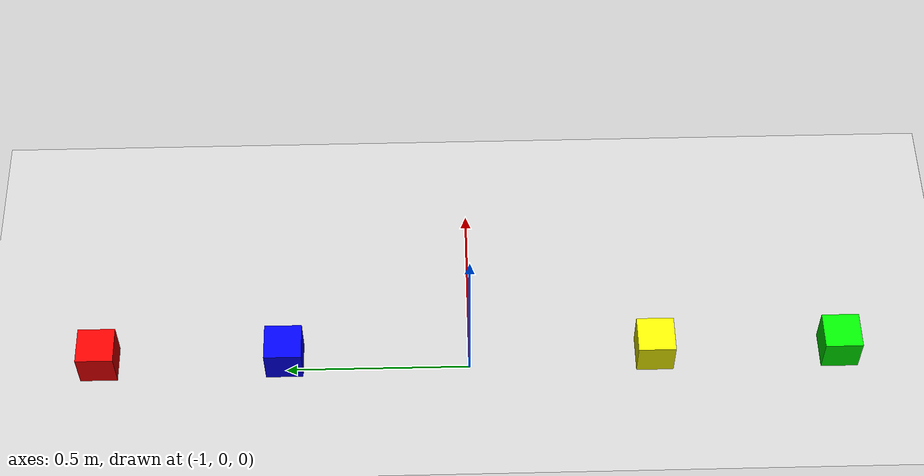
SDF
<?xml version="1.0" ?>
<sdf version="1.6">
  <world name="empty">
    <physics name="1ms" type="ignored">
      <max_step_size>0.001</max_step_size>
      <real_time_factor>1.0</real_time_factor>
    </physics>

    <plugin filename="ignition-gazebo-contact-system" name="gz::sim::systems::Contact" />
    <plugin filename="ignition-gazebo-imu-system" name="gz::sim::systems::Imu" />
    <plugin filename="ignition-gazebo-physics-system" name="gz::sim::systems::Physics" />
    <plugin filename="ignition-gazebo-scene-broadcaster-system"
      name="gz::sim::systems::SceneBroadcaster" />
    <plugin filename="ignition-gazebo-sensors-system" name="gz::sim::systems::Sensors" />
    <plugin filename="ignition-gazebo-user-commands-system" name="gz::sim::systems::UserCommands" />

    <spherical_coordinates>
      <surface_model>EARTH_WGS84</surface_model>
      <world_frame_orientation>ENU</world_frame_orientation>
      <latitude_deg>50.088384</latitude_deg>
      <longitude_deg>19.939128</longitude_deg>
      <elevation>0</elevation>
      <heading_deg>0</heading_deg>
    </spherical_coordinates>

    <light type="directional" name="sun">
      <cast_shadows>true</cast_shadows>
      <pose>0 0 10 0 0 0</pose>
      <diffuse>0.8 0.8 0.8 1</diffuse>
      <specular>0.2 0.2 0.2 1</specular>
      <attenuation>
        <range>1000</range>
        <constant>0.9</constant>
        <linear>0.01</linear>
        <quadratic>0.001</quadratic>
      </attenuation>
      <direction>-0.5 0.1 -0.9</direction>
    </light>

    <model name="ground_plane">
      <static>true</static>
      <link name="link">
        <collision name="collision">
          <geometry>
            <plane>
              <normal>0 0 1</normal>
              <size>100 100</size>
            </plane>
          </geometry>
        </collision>
        <visual name="visual">
          <geometry>
            <plane>
              <normal>0 0 1</normal>
              <size>100 100</size>
            </plane>
          </geometry>
          <material>
            <ambient>0.8 0.8 0.8 1</ambient>
            <diffuse>0.8 0.8 0.8 1</diffuse>
            <specular>0.8 0.8 0.8 1</specular>
          </material>
        </visual>
      </link>
    </model>

    <model name="red_cube">
      <pose>-1 1 0.1 0 0 0</pose>
      <static>true</static>
      <link name="link">
        <visual name="visual">
          <geometry>
            <box>
              <size>0.1 0.1 0.1</size>
            </box>
          </geometry>
          <material>
            <ambient>1 0 0 1</ambient>
            <diffuse>1 0 0 1</diffuse>
            <specular>0.1 0.1 0.1 1</specular>
          </material>
        </visual>
      </link>
    </model>

    <model name="blue_cube">
      <pose>-1 0.5 0.1 0 0 0</pose>
      <static>true</static>
      <link name="link">
        <visual name="visual">
          <geometry>
            <box>
              <size>0.1 0.1 0.1</size>
            </box>
          </geometry>
          <material>
            <ambient>0 0 1 1</ambient>
            <diffuse>0 0 1 1</diffuse>
            <specular>0.1 0.1 0.1 1</specular>
          </material>
        </visual>
      </link>
    </model>

    <model name="green_cube">
      <pose>-1 -1 0.1 0 0 0</pose>
      <static>true</static>
      <link name="link">
        <visual name="visual">
          <geometry>
            <box>
              <size>0.1 0.1 0.1</size>
            </box>
          </geometry>
          <material>
            <ambient>0 1 0 1</ambient>
            <diffuse>0 1 0 1</diffuse>
            <specular>0.1 0.1 0.1 1</specular>
          </material>
        </visual>
      </link>
    </model>

    <model name="yellow_cube">
      <pose>-1 -0.5 0.1 0 0 0</pose>
      <static>true</static>
      <link name="link">
        <visual name="visual">
          <geometry>
            <box>
              <size>0.1 0.1 0.1</size>
            </box>
          </geometry>
          <material>
            <ambient>1 1 0 1</ambient>
            <diffuse>1 1 0 1</diffuse>
            <specular>0.1 0.1 0.1 1</specular>
          </material>
        </visual>
      </link>
    </model>

  </world>
</sdf>
